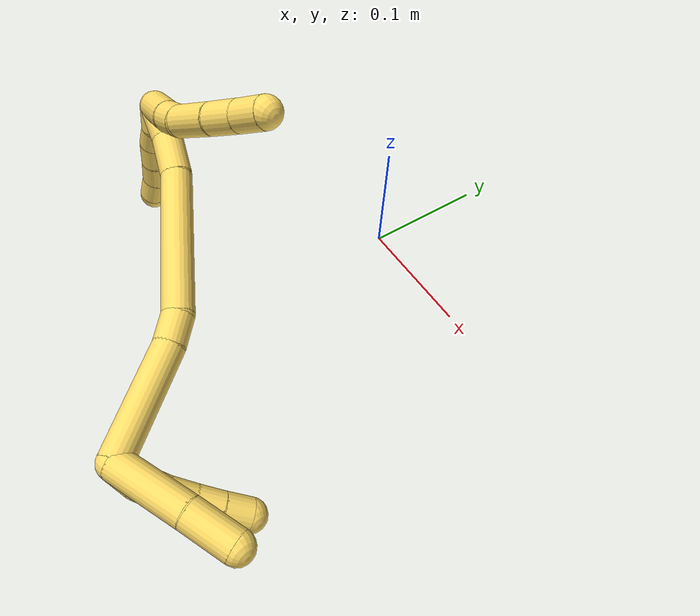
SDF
<sdf version="1.7">
 <world name="default">
  <model name="5">
   <static>0</static>
   <link name="5">
    <collision name="collision-cylinder-e_1_2_8">
     <pose>0.00334 0.006588 -0.018888 -2.80597 0.165424 -0.910218</pose>
     <geometry><cylinder><radius>0.0125</radius><length>0.040561</length></cylinder></geometry>
     <surface>
      <friction><ode><mu>1.16</mu><mu2>1.16</mu2><slip1>0</slip1><slip2>0</slip2></ode></friction>
      <contact><ode><kp>1e+06</kp><kd>1</kd><max_vel>0</max_vel><min_depth>0.001</min_depth></ode></contact>
     </surface>
    </collision>
    <visual name="visual-cylinder-e_1_2_8">
     <pose>0.00334 0.006588 -0.018888 -2.80597 0.165424 -0.910218</pose>
     <geometry><cylinder><radius>0.0125</radius><length>0.040561</length></cylinder></geometry>
     <material><ambient>1 0.858824 0.4 1</ambient></material>
    </visual>
    <collision name="collision-cylinder-e_2_8_9">
     <pose>0.006747 0.01601 -0.047432 -2.85616 0.006727 -0.04681</pose>
     <geometry><cylinder><radius>0.0125</radius><length>0.020128</length></cylinder></geometry>
     <surface>
      <friction><ode><mu>1.16</mu><mu2>1.16</mu2><slip1>0</slip1><slip2>0</slip2></ode></friction>
      <contact><ode><kp>1e+06</kp><kd>1</kd><max_vel>0</max_vel><min_depth>0.001</min_depth></ode></contact>
     </surface>
    </collision>
    <visual name="visual-cylinder-e_2_8_9">
     <pose>0.006747 0.01601 -0.047432 -2.85616 0.006727 -0.04681</pose>
     <geometry><cylinder><radius>0.0125</radius><length>0.020128</length></cylinder></geometry>
     <material><ambient>1 0.858824 0.4 1</ambient></material>
    </visual>
    <collision name="collision-cylinder-e_3_9_10">
     <pose>0.001488 0.024709 -0.074101 -2.8096 -0.287801 1.42616</pose>
     <geometry><cylinder><radius>0.0125</radius><length>0.037535</length></cylinder></geometry>
     <surface>
      <friction><ode><mu>1.16</mu><mu2>1.16</mu2><slip1>0</slip1><slip2>0</slip2></ode></friction>
      <contact><ode><kp>1e+06</kp><kd>1</kd><max_vel>0</max_vel><min_depth>0.001</min_depth></ode></contact>
     </surface>
    </collision>
    <visual name="visual-cylinder-e_3_9_10">
     <pose>0.001488 0.024709 -0.074101 -2.8096 -0.287801 1.42616</pose>
     <geometry><cylinder><radius>0.0125</radius><length>0.037535</length></cylinder></geometry>
     <material><ambient>1 0.858824 0.4 1</ambient></material>
    </visual>
    <collision name="collision-cylinder-e_4_10_11">
     <pose>-0.008822 0.034152 -0.103055 -2.85045 -0.38025 1.83958</pose>
     <geometry><cylinder><radius>0.0125</radius><length>0.026848</length></cylinder></geometry>
     <surface>
      <friction><ode><mu>1.16</mu><mu2>1.16</mu2><slip1>0</slip1><slip2>0</slip2></ode></friction>
      <contact><ode><kp>1e+06</kp><kd>1</kd><max_vel>0</max_vel><min_depth>0.001</min_depth></ode></contact>
     </surface>
    </collision>
    <visual name="visual-cylinder-e_4_10_11">
     <pose>-0.008822 0.034152 -0.103055 -2.85045 -0.38025 1.83958</pose>
     <geometry><cylinder><radius>0.0125</radius><length>0.026848</length></cylinder></geometry>
     <material><ambient>1 0.858824 0.4 1</ambient></material>
    </visual>
    <collision name="collision-cylinder-e_5_11_6">
     <pose>-0.018249 0.041491 -0.126016 -2.81275 -0.364648 1.67606</pose>
     <geometry><cylinder><radius>0.0125</radius><length>0.024928</length></cylinder></geometry>
     <surface>
      <friction><ode><mu>1.16</mu><mu2>1.16</mu2><slip1>0</slip1><slip2>0</slip2></ode></friction>
      <contact><ode><kp>1e+06</kp><kd>1</kd><max_vel>0</max_vel><min_depth>0.001</min_depth></ode></contact>
     </surface>
    </collision>
    <visual name="visual-cylinder-e_5_11_6">
     <pose>-0.018249 0.041491 -0.126016 -2.81275 -0.364648 1.67606</pose>
     <geometry><cylinder><radius>0.0125</radius><length>0.024928</length></cylinder></geometry>
     <material><ambient>1 0.858824 0.4 1</ambient></material>
    </visual>
    <collision name="collision-cylinder-e_1_2_12">
     <pose>0.003538 -0.009335 0.000584 1.50836 0.36159 0.340122</pose>
     <geometry><cylinder><radius>0.0125</radius><length>0.02</length></cylinder></geometry>
     <surface>
      <friction><ode><mu>1.16</mu><mu2>1.16</mu2><slip1>0</slip1><slip2>0</slip2></ode></friction>
      <contact><ode><kp>1e+06</kp><kd>1</kd><max_vel>0</max_vel><min_depth>0.001</min_depth></ode></contact>
     </surface>
    </collision>
    <visual name="visual-cylinder-e_1_2_12">
     <pose>0.003538 -0.009335 0.000584 1.50836 0.36159 0.340122</pose>
     <geometry><cylinder><radius>0.0125</radius><length>0.02</length></cylinder></geometry>
     <material><ambient>1 0.858824 0.4 1</ambient></material>
    </visual>
    <collision name="collision-cylinder-e_2_12_13">
     <pose>0.01002 -0.027427 0.004995 1.15869 0.298891 0.19638</pose>
     <geometry><cylinder><radius>0.0125</radius><length>0.02</length></cylinder></geometry>
     <surface>
      <friction><ode><mu>1.16</mu><mu2>1.16</mu2><slip1>0</slip1><slip2>0</slip2></ode></friction>
      <contact><ode><kp>1e+06</kp><kd>1</kd><max_vel>0</max_vel><min_depth>0.001</min_depth></ode></contact>
     </surface>
    </collision>
    <visual name="visual-cylinder-e_2_12_13">
     <pose>0.01002 -0.027427 0.004995 1.15869 0.298891 0.19638</pose>
     <geometry><cylinder><radius>0.0125</radius><length>0.02</length></cylinder></geometry>
     <material><ambient>1 0.858824 0.4 1</ambient></material>
    </visual>
    <collision name="collision-cylinder-e_3_13_14">
     <pose>0.015844 -0.045669 0.01014 1.43285 0.292102 0.254789</pose>
     <geometry><cylinder><radius>0.0125</radius><length>0.02</length></cylinder></geometry>
     <surface>
      <friction><ode><mu>1.16</mu><mu2>1.16</mu2><slip1>0</slip1><slip2>0</slip2></ode></friction>
      <contact><ode><kp>1e+06</kp><kd>1</kd><max_vel>0</max_vel><min_depth>0.001</min_depth></ode></contact>
     </surface>
    </collision>
    <visual name="visual-cylinder-e_3_13_14">
     <pose>0.015844 -0.045669 0.01014 1.43285 0.292102 0.254789</pose>
     <geometry><cylinder><radius>0.0125</radius><length>0.02</length></cylinder></geometry>
     <material><ambient>1 0.858824 0.4 1</ambient></material>
    </visual>
    <collision name="collision-cylinder-e_4_14_15">
     <pose>0.021552 -0.064532 0.013473 1.35893 0.28672 0.232157</pose>
     <geometry><cylinder><radius>0.0125</radius><length>0.02</length></cylinder></geometry>
     <surface>
      <friction><ode><mu>1.16</mu><mu2>1.16</mu2><slip1>0</slip1><slip2>0</slip2></ode></friction>
      <contact><ode><kp>1e+06</kp><kd>1</kd><max_vel>0</max_vel><min_depth>0.001</min_depth></ode></contact>
     </surface>
    </collision>
    <visual name="visual-cylinder-e_4_14_15">
     <pose>0.021552 -0.064532 0.013473 1.35893 0.28672 0.232157</pose>
     <geometry><cylinder><radius>0.0125</radius><length>0.02</length></cylinder></geometry>
     <material><ambient>1 0.858824 0.4 1</ambient></material>
    </visual>
    <collision name="collision-cylinder-e_5_15_5">
     <pose>0.028248 -0.082653 0.01842 1.24754 0.3972 0.287649</pose>
     <geometry><cylinder><radius>0.0125</radius><length>0.02</length></cylinder></geometry>
     <surface>
      <friction><ode><mu>1.16</mu><mu2>1.16</mu2><slip1>0</slip1><slip2>0</slip2></ode></friction>
      <contact><ode><kp>1e+06</kp><kd>1</kd><max_vel>0</max_vel><min_depth>0.001</min_depth></ode></contact>
     </surface>
    </collision>
    <visual name="visual-cylinder-e_5_15_5">
     <pose>0.028248 -0.082653 0.01842 1.24754 0.3972 0.287649</pose>
     <geometry><cylinder><radius>0.0125</radius><length>0.02</length></cylinder></geometry>
     <material><ambient>1 0.858824 0.4 1</ambient></material>
    </visual>
    <collision name="collision-cylinder-e_1_2_16">
     <pose>0.005702 -0.006687 -0.012174 2.63934 0.389556 1.31109</pose>
     <geometry><cylinder><radius>0.0125</radius><length>0.030029</length></cylinder></geometry>
     <surface>
      <friction><ode><mu>1.16</mu><mu2>1.16</mu2><slip1>0</slip1><slip2>0</slip2></ode></friction>
      <contact><ode><kp>1e+06</kp><kd>1</kd><max_vel>0</max_vel><min_depth>0.001</min_depth></ode></contact>
     </surface>
    </collision>
    <visual name="visual-cylinder-e_1_2_16">
     <pose>0.005702 -0.006687 -0.012174 2.63934 0.389556 1.31109</pose>
     <geometry><cylinder><radius>0.0125</radius><length>0.030029</length></cylinder></geometry>
     <material><ambient>1 0.858824 0.4 1</ambient></material>
    </visual>
    <collision name="collision-cylinder-e_2_16_17">
     <pose>0.020151 -0.017916 -0.039644 2.85287 0.501455 2.10907</pose>
     <geometry><cylinder><radius>0.0125</radius><length>0.036392</length></cylinder></geometry>
     <surface>
      <friction><ode><mu>1.16</mu><mu2>1.16</mu2><slip1>0</slip1><slip2>0</slip2></ode></friction>
      <contact><ode><kp>1e+06</kp><kd>1</kd><max_vel>0</max_vel><min_depth>0.001</min_depth></ode></contact>
     </surface>
    </collision>
    <visual name="visual-cylinder-e_2_16_17">
     <pose>0.020151 -0.017916 -0.039644 2.85287 0.501455 2.10907</pose>
     <geometry><cylinder><radius>0.0125</radius><length>0.036392</length></cylinder></geometry>
     <material><ambient>1 0.858824 0.4 1</ambient></material>
    </visual>
    <collision name="collision-cylinder-e_3_17_18">
     <pose>0.06669 -0.034708 -0.099136 2.87125 0.689218 2.41721</pose>
     <geometry><cylinder><radius>0.0125</radius><length>0.118855</length></cylinder></geometry>
     <surface>
      <friction><ode><mu>1.16</mu><mu2>1.16</mu2><slip1>0</slip1><slip2>0</slip2></ode></friction>
      <contact><ode><kp>1e+06</kp><kd>1</kd><max_vel>0</max_vel><min_depth>0.001</min_depth></ode></contact>
     </surface>
    </collision>
    <visual name="visual-cylinder-e_3_17_18">
     <pose>0.06669 -0.034708 -0.099136 2.87125 0.689218 2.41721</pose>
     <geometry><cylinder><radius>0.0125</radius><length>0.118855</length></cylinder></geometry>
     <material><ambient>1 0.858824 0.4 1</ambient></material>
    </visual>
    <collision name="collision-cylinder-e_4_18_19">
     <pose>0.114651 -0.048488 -0.150228 2.92288 0.9637 2.72772</pose>
     <geometry><cylinder><radius>0.0125</radius><length>0.024762</length></cylinder></geometry>
     <surface>
      <friction><ode><mu>1.16</mu><mu2>1.16</mu2><slip1>0</slip1><slip2>0</slip2></ode></friction>
      <contact><ode><kp>1e+06</kp><kd>1</kd><max_vel>0</max_vel><min_depth>0.001</min_depth></ode></contact>
     </surface>
    </collision>
    <visual name="visual-cylinder-e_4_18_19">
     <pose>0.114651 -0.048488 -0.150228 2.92288 0.9637 2.72772</pose>
     <geometry><cylinder><radius>0.0125</radius><length>0.024762</length></cylinder></geometry>
     <material><ambient>1 0.858824 0.4 1</ambient></material>
    </visual>
    <collision name="collision-cylinder-e_5_19_1">
     <pose>0.164527 -0.051077 -0.17823 3.09158 1.0817 3.05835</pose>
     <geometry><cylinder><radius>0.0125</radius><length>0.089961</length></cylinder></geometry>
     <surface>
      <friction><ode><mu>1.16</mu><mu2>1.16</mu2><slip1>0</slip1><slip2>0</slip2></ode></friction>
      <contact><ode><kp>1e+06</kp><kd>1</kd><max_vel>0</max_vel><min_depth>0.001</min_depth></ode></contact>
     </surface>
    </collision>
    <visual name="visual-cylinder-e_5_19_1">
     <pose>0.164527 -0.051077 -0.17823 3.09158 1.0817 3.05835</pose>
     <geometry><cylinder><radius>0.0125</radius><length>0.089961</length></cylinder></geometry>
     <material><ambient>1 0.858824 0.4 1</ambient></material>
    </visual>
    <collision name="collision-cylinder-e_1_1_20">
     <pose>0.196859 -0.057617 -0.228932 2.95839 -0.24029 -1.84075</pose>
     <geometry><cylinder><radius>0.0125</radius><length>0.061979</length></cylinder></geometry>
     <surface>
      <friction><ode><mu>1.16</mu><mu2>1.16</mu2><slip1>0</slip1><slip2>0</slip2></ode></friction>
      <contact><ode><kp>1e+06</kp><kd>1</kd><max_vel>0</max_vel><min_depth>0.001</min_depth></ode></contact>
     </surface>
    </collision>
    <visual name="visual-cylinder-e_1_1_20">
     <pose>0.196859 -0.057617 -0.228932 2.95839 -0.24029 -1.84075</pose>
     <geometry><cylinder><radius>0.0125</radius><length>0.061979</length></cylinder></geometry>
     <material><ambient>1 0.858824 0.4 1</ambient></material>
    </visual>
    <collision name="collision-cylinder-e_2_20_4">
     <pose>0.185214 -0.068169 -0.276345 2.86446 -0.226542 -1.36849</pose>
     <geometry><cylinder><radius>0.0125</radius><length>0.038021</length></cylinder></geometry>
     <surface>
      <friction><ode><mu>1.16</mu><mu2>1.16</mu2><slip1>0</slip1><slip2>0</slip2></ode></friction>
      <contact><ode><kp>1e+06</kp><kd>1</kd><max_vel>0</max_vel><min_depth>0.001</min_depth></ode></contact>
     </surface>
    </collision>
    <visual name="visual-cylinder-e_2_20_4">
     <pose>0.185214 -0.068169 -0.276345 2.86446 -0.226542 -1.36849</pose>
     <geometry><cylinder><radius>0.0125</radius><length>0.038021</length></cylinder></geometry>
     <material><ambient>1 0.858824 0.4 1</ambient></material>
    </visual>
    <collision name="collision-cylinder-e_1_1_21">
     <pose>0.202621 -0.057333 -0.207725 2.5867 -0.16202 -0.555421</pose>
     <geometry><cylinder><radius>0.0125</radius><length>0.02</length></cylinder></geometry>
     <surface>
      <friction><ode><mu>1.16</mu><mu2>1.16</mu2><slip1>0</slip1><slip2>0</slip2></ode></friction>
      <contact><ode><kp>1e+06</kp><kd>1</kd><max_vel>0</max_vel><min_depth>0.001</min_depth></ode></contact>
     </surface>
    </collision>
    <visual name="visual-cylinder-e_1_1_21">
     <pose>0.202621 -0.057333 -0.207725 2.5867 -0.16202 -0.555421</pose>
     <geometry><cylinder><radius>0.0125</radius><length>0.02</length></cylinder></geometry>
     <material><ambient>1 0.858824 0.4 1</ambient></material>
    </visual>
    <collision name="collision-cylinder-e_2_21_22">
     <pose>0.197137 -0.068792 -0.222883 2.39538 -0.397482 -0.950367</pose>
     <geometry><cylinder><radius>0.0125</radius><length>0.02</length></cylinder></geometry>
     <surface>
      <friction><ode><mu>1.16</mu><mu2>1.16</mu2><slip1>0</slip1><slip2>0</slip2></ode></friction>
      <contact><ode><kp>1e+06</kp><kd>1</kd><max_vel>0</max_vel><min_depth>0.001</min_depth></ode></contact>
     </surface>
    </collision>
    <visual name="visual-cylinder-e_2_21_22">
     <pose>0.197137 -0.068792 -0.222883 2.39538 -0.397482 -0.950367</pose>
     <geometry><cylinder><radius>0.0125</radius><length>0.02</length></cylinder></geometry>
     <material><ambient>1 0.858824 0.4 1</ambient></material>
    </visual>
    <collision name="collision-cylinder-e_3_22_23">
     <pose>0.188356 -0.081102 -0.235921 2.37383 -0.513227 -1.15223</pose>
     <geometry><cylinder><radius>0.0125</radius><length>0.02</length></cylinder></geometry>
     <surface>
      <friction><ode><mu>1.16</mu><mu2>1.16</mu2><slip1>0</slip1><slip2>0</slip2></ode></friction>
      <contact><ode><kp>1e+06</kp><kd>1</kd><max_vel>0</max_vel><min_depth>0.001</min_depth></ode></contact>
     </surface>
    </collision>
    <visual name="visual-cylinder-e_3_22_23">
     <pose>0.188356 -0.081102 -0.235921 2.37383 -0.513227 -1.15223</pose>
     <geometry><cylinder><radius>0.0125</radius><length>0.02</length></cylinder></geometry>
     <material><ambient>1 0.858824 0.4 1</ambient></material>
    </visual>
    <collision name="collision-cylinder-e_4_23_24">
     <pose>0.17821 -0.092593 -0.248746 2.44898 -0.551011 -1.32909</pose>
     <geometry><cylinder><radius>0.0125</radius><length>0.02</length></cylinder></geometry>
     <surface>
      <friction><ode><mu>1.16</mu><mu2>1.16</mu2><slip1>0</slip1><slip2>0</slip2></ode></friction>
      <contact><ode><kp>1e+06</kp><kd>1</kd><max_vel>0</max_vel><min_depth>0.001</min_depth></ode></contact>
     </surface>
    </collision>
    <visual name="visual-cylinder-e_4_23_24">
     <pose>0.17821 -0.092593 -0.248746 2.44898 -0.551011 -1.32909</pose>
     <geometry><cylinder><radius>0.0125</radius><length>0.02</length></cylinder></geometry>
     <material><ambient>1 0.858824 0.4 1</ambient></material>
    </visual>
    <collision name="collision-cylinder-e_5_24_3">
     <pose>0.16752 -0.10381 -0.261375 2.38119 -0.576944 -1.27741</pose>
     <geometry><cylinder><radius>0.0125</radius><length>0.02</length></cylinder></geometry>
     <surface>
      <friction><ode><mu>1.16</mu><mu2>1.16</mu2><slip1>0</slip1><slip2>0</slip2></ode></friction>
      <contact><ode><kp>1e+06</kp><kd>1</kd><max_vel>0</max_vel><min_depth>0.001</min_depth></ode></contact>
     </surface>
    </collision>
    <visual name="visual-cylinder-e_5_24_3">
     <pose>0.16752 -0.10381 -0.261375 2.38119 -0.576944 -1.27741</pose>
     <geometry><cylinder><radius>0.0125</radius><length>0.02</length></cylinder></geometry>
     <material><ambient>1 0.858824 0.4 1</ambient></material>
    </visual>
    <collision name="collision-sphere-3">
     <pose>0.162066 -0.109586 -0.267448 0 -0 0</pose>
     <geometry><sphere><radius>0.0125</radius></sphere></geometry>
     <surface>
      <friction><ode><mu>1.16</mu><mu2>1.16</mu2><slip1>0</slip1><slip2>0</slip2></ode></friction>
      <contact><ode><kp>1e+06</kp><kd>1</kd><max_vel>0</max_vel><min_depth>0.001</min_depth></ode></contact>
     </surface>
    </collision>
    <visual name="visual-sphere-3">
     <pose>0.162066 -0.109586 -0.267448 0 -0 0</pose>
     <geometry><sphere><radius>0.0125</radius></sphere></geometry>
     <material><ambient>1 0.858824 0.4 1</ambient></material>
    </visual>
    <collision name="collision-sphere-24">
     <pose>0.172975 -0.098033 -0.255303 0 -0 0</pose>
     <geometry><sphere><radius>0.0125</radius></sphere></geometry>
     <surface>
      <friction><ode><mu>1.16</mu><mu2>1.16</mu2><slip1>0</slip1><slip2>0</slip2></ode></friction>
      <contact><ode><kp>1e+06</kp><kd>1</kd><max_vel>0</max_vel><min_depth>0.001</min_depth></ode></contact>
     </surface>
    </collision>
    <visual name="visual-sphere-24">
     <pose>0.172975 -0.098033 -0.255303 0 -0 0</pose>
     <geometry><sphere><radius>0.0125</radius></sphere></geometry>
     <material><ambient>1 0.858824 0.4 1</ambient></material>
    </visual>
    <collision name="collision-sphere-23">
     <pose>0.183446 -0.087153 -0.242189 0 -0 0</pose>
     <geometry><sphere><radius>0.0125</radius></sphere></geometry>
     <surface>
      <friction><ode><mu>1.16</mu><mu2>1.16</mu2><slip1>0</slip1><slip2>0</slip2></ode></friction>
      <contact><ode><kp>1e+06</kp><kd>1</kd><max_vel>0</max_vel><min_depth>0.001</min_depth></ode></contact>
     </surface>
    </collision>
    <visual name="visual-sphere-23">
     <pose>0.183446 -0.087153 -0.242189 0 -0 0</pose>
     <geometry><sphere><radius>0.0125</radius></sphere></geometry>
     <material><ambient>1 0.858824 0.4 1</ambient></material>
    </visual>
    <collision name="collision-sphere-22">
     <pose>0.193266 -0.075052 -0.229653 0 -0 0</pose>
     <geometry><sphere><radius>0.0125</radius></sphere></geometry>
     <surface>
      <friction><ode><mu>1.16</mu><mu2>1.16</mu2><slip1>0</slip1><slip2>0</slip2></ode></friction>
      <contact><ode><kp>1e+06</kp><kd>1</kd><max_vel>0</max_vel><min_depth>0.001</min_depth></ode></contact>
     </surface>
    </collision>
    <visual name="visual-sphere-22">
     <pose>0.193266 -0.075052 -0.229653 0 -0 0</pose>
     <geometry><sphere><radius>0.0125</radius></sphere></geometry>
     <material><ambient>1 0.858824 0.4 1</ambient></material>
    </visual>
    <collision name="collision-sphere-21">
     <pose>0.201008 -0.062533 -0.216113 0 -0 0</pose>
     <geometry><sphere><radius>0.0125</radius></sphere></geometry>
     <surface>
      <friction><ode><mu>1.16</mu><mu2>1.16</mu2><slip1>0</slip1><slip2>0</slip2></ode></friction>
      <contact><ode><kp>1e+06</kp><kd>1</kd><max_vel>0</max_vel><min_depth>0.001</min_depth></ode></contact>
     </surface>
    </collision>
    <visual name="visual-sphere-21">
     <pose>0.201008 -0.062533 -0.216113 0 -0 0</pose>
     <geometry><sphere><radius>0.0125</radius></sphere></geometry>
     <material><ambient>1 0.858824 0.4 1</ambient></material>
    </visual>
    <collision name="collision-sphere-4">
     <pose>0.180944 -0.073237 -0.294163 0 -0 0</pose>
     <geometry><sphere><radius>0.0125</radius></sphere></geometry>
     <surface>
      <friction><ode><mu>1.16</mu><mu2>1.16</mu2><slip1>0</slip1><slip2>0</slip2></ode></friction>
      <contact><ode><kp>1e+06</kp><kd>1</kd><max_vel>0</max_vel><min_depth>0.001</min_depth></ode></contact>
     </surface>
    </collision>
    <visual name="visual-sphere-4">
     <pose>0.180944 -0.073237 -0.294163 0 -0 0</pose>
     <geometry><sphere><radius>0.0125</radius></sphere></geometry>
     <material><ambient>1 0.858824 0.4 1</ambient></material>
    </visual>
    <collision name="collision-sphere-20">
     <pose>0.189484 -0.063101 -0.258527 0 -0 0</pose>
     <geometry><sphere><radius>0.0125</radius></sphere></geometry>
     <surface>
      <friction><ode><mu>1.16</mu><mu2>1.16</mu2><slip1>0</slip1><slip2>0</slip2></ode></friction>
      <contact><ode><kp>1e+06</kp><kd>1</kd><max_vel>0</max_vel><min_depth>0.001</min_depth></ode></contact>
     </surface>
    </collision>
    <visual name="visual-sphere-20">
     <pose>0.189484 -0.063101 -0.258527 0 -0 0</pose>
     <geometry><sphere><radius>0.0125</radius></sphere></geometry>
     <material><ambient>1 0.858824 0.4 1</ambient></material>
    </visual>
    <collision name="collision-sphere-6">
     <pose>-0.022694 0.045251 -0.137037 0 -0 0</pose>
     <geometry><sphere><radius>0.0125</radius></sphere></geometry>
     <surface>
      <friction><ode><mu>1.16</mu><mu2>1.16</mu2><slip1>0</slip1><slip2>0</slip2></ode></friction>
      <contact><ode><kp>1e+06</kp><kd>1</kd><max_vel>0</max_vel><min_depth>0.001</min_depth></ode></contact>
     </surface>
    </collision>
    <visual name="visual-sphere-6">
     <pose>-0.022694 0.045251 -0.137037 0 -0 0</pose>
     <geometry><sphere><radius>0.0125</radius></sphere></geometry>
     <material><ambient>1 0.858824 0.4 1</ambient></material>
    </visual>
    <collision name="collision-sphere-11">
     <pose>-0.013804 0.03773 -0.114996 0 -0 0</pose>
     <geometry><sphere><radius>0.0125</radius></sphere></geometry>
     <surface>
      <friction><ode><mu>1.16</mu><mu2>1.16</mu2><slip1>0</slip1><slip2>0</slip2></ode></friction>
      <contact><ode><kp>1e+06</kp><kd>1</kd><max_vel>0</max_vel><min_depth>0.001</min_depth></ode></contact>
     </surface>
    </collision>
    <visual name="visual-sphere-11">
     <pose>-0.013804 0.03773 -0.114996 0 -0 0</pose>
     <geometry><sphere><radius>0.0125</radius></sphere></geometry>
     <material><ambient>1 0.858824 0.4 1</ambient></material>
    </visual>
    <collision name="collision-sphere-10">
     <pose>-0.00384 0.030574 -0.091114 0 -0 0</pose>
     <geometry><sphere><radius>0.0125</radius></sphere></geometry>
     <surface>
      <friction><ode><mu>1.16</mu><mu2>1.16</mu2><slip1>0</slip1><slip2>0</slip2></ode></friction>
      <contact><ode><kp>1e+06</kp><kd>1</kd><max_vel>0</max_vel><min_depth>0.001</min_depth></ode></contact>
     </surface>
    </collision>
    <visual name="visual-sphere-10">
     <pose>-0.00384 0.030574 -0.091114 0 -0 0</pose>
     <geometry><sphere><radius>0.0125</radius></sphere></geometry>
     <material><ambient>1 0.858824 0.4 1</ambient></material>
    </visual>
    <collision name="collision-sphere-9">
     <pose>0.006815 0.018844 -0.057088 0 -0 0</pose>
     <geometry><sphere><radius>0.0125</radius></sphere></geometry>
     <surface>
      <friction><ode><mu>1.16</mu><mu2>1.16</mu2><slip1>0</slip1><slip2>0</slip2></ode></friction>
      <contact><ode><kp>1e+06</kp><kd>1</kd><max_vel>0</max_vel><min_depth>0.001</min_depth></ode></contact>
     </surface>
    </collision>
    <visual name="visual-sphere-9">
     <pose>0.006815 0.018844 -0.057088 0 -0 0</pose>
     <geometry><sphere><radius>0.0125</radius></sphere></geometry>
     <material><ambient>1 0.858824 0.4 1</ambient></material>
    </visual>
    <collision name="collision-sphere-2">
     <geometry><sphere><radius>0.0125</radius></sphere></geometry>
     <surface>
      <friction><ode><mu>1.16</mu><mu2>1.16</mu2><slip1>0</slip1><slip2>0</slip2></ode></friction>
      <contact><ode><kp>1e+06</kp><kd>1</kd><max_vel>0</max_vel><min_depth>0.001</min_depth></ode></contact>
     </surface>
    </collision>
    <visual name="visual-sphere-2">
     <geometry><sphere><radius>0.0125</radius></sphere></geometry>
     <material><ambient>1 0.858824 0.4 1</ambient></material>
    </visual>
    <collision name="collision-sphere-19">
     <pose>0.12482 -0.050021 -0.157123 0 -0 0</pose>
     <geometry><sphere><radius>0.0125</radius></sphere></geometry>
     <surface>
      <friction><ode><mu>1.16</mu><mu2>1.16</mu2><slip1>0</slip1><slip2>0</slip2></ode></friction>
      <contact><ode><kp>1e+06</kp><kd>1</kd><max_vel>0</max_vel><min_depth>0.001</min_depth></ode></contact>
     </surface>
    </collision>
    <visual name="visual-sphere-19">
     <pose>0.12482 -0.050021 -0.157123 0 -0 0</pose>
     <geometry><sphere><radius>0.0125</radius></sphere></geometry>
     <material><ambient>1 0.858824 0.4 1</ambient></material>
    </visual>
    <collision name="collision-sphere-8">
     <pose>0.006679 0.013177 -0.037775 0 -0 0</pose>
     <geometry><sphere><radius>0.0125</radius></sphere></geometry>
     <surface>
      <friction><ode><mu>1.16</mu><mu2>1.16</mu2><slip1>0</slip1><slip2>0</slip2></ode></friction>
      <contact><ode><kp>1e+06</kp><kd>1</kd><max_vel>0</max_vel><min_depth>0.001</min_depth></ode></contact>
     </surface>
    </collision>
    <visual name="visual-sphere-8">
     <pose>0.006679 0.013177 -0.037775 0 -0 0</pose>
     <geometry><sphere><radius>0.0125</radius></sphere></geometry>
     <material><ambient>1 0.858824 0.4 1</ambient></material>
    </visual>
    <collision name="collision-sphere-12">
     <pose>0.007075 -0.01867 0.001167 0 -0 0</pose>
     <geometry><sphere><radius>0.0125</radius></sphere></geometry>
     <surface>
      <friction><ode><mu>1.16</mu><mu2>1.16</mu2><slip1>0</slip1><slip2>0</slip2></ode></friction>
      <contact><ode><kp>1e+06</kp><kd>1</kd><max_vel>0</max_vel><min_depth>0.001</min_depth></ode></contact>
     </surface>
    </collision>
    <visual name="visual-sphere-12">
     <pose>0.007075 -0.01867 0.001167 0 -0 0</pose>
     <geometry><sphere><radius>0.0125</radius></sphere></geometry>
     <material><ambient>1 0.858824 0.4 1</ambient></material>
    </visual>
    <collision name="collision-sphere-13">
     <pose>0.012964 -0.036183 0.008823 0 -0 0</pose>
     <geometry><sphere><radius>0.0125</radius></sphere></geometry>
     <surface>
      <friction><ode><mu>1.16</mu><mu2>1.16</mu2><slip1>0</slip1><slip2>0</slip2></ode></friction>
      <contact><ode><kp>1e+06</kp><kd>1</kd><max_vel>0</max_vel><min_depth>0.001</min_depth></ode></contact>
     </surface>
    </collision>
    <visual name="visual-sphere-13">
     <pose>0.012964 -0.036183 0.008823 0 -0 0</pose>
     <geometry><sphere><radius>0.0125</radius></sphere></geometry>
     <material><ambient>1 0.858824 0.4 1</ambient></material>
    </visual>
    <collision name="collision-sphere-14">
     <pose>0.018724 -0.055154 0.011456 0 -0 0</pose>
     <geometry><sphere><radius>0.0125</radius></sphere></geometry>
     <surface>
      <friction><ode><mu>1.16</mu><mu2>1.16</mu2><slip1>0</slip1><slip2>0</slip2></ode></friction>
      <contact><ode><kp>1e+06</kp><kd>1</kd><max_vel>0</max_vel><min_depth>0.001</min_depth></ode></contact>
     </surface>
    </collision>
    <visual name="visual-sphere-14">
     <pose>0.018724 -0.055154 0.011456 0 -0 0</pose>
     <geometry><sphere><radius>0.0125</radius></sphere></geometry>
     <material><ambient>1 0.858824 0.4 1</ambient></material>
    </visual>
    <collision name="collision-sphere-15">
     <pose>0.02438 -0.073909 0.01549 0 -0 0</pose>
     <geometry><sphere><radius>0.0125</radius></sphere></geometry>
     <surface>
      <friction><ode><mu>1.16</mu><mu2>1.16</mu2><slip1>0</slip1><slip2>0</slip2></ode></friction>
      <contact><ode><kp>1e+06</kp><kd>1</kd><max_vel>0</max_vel><min_depth>0.001</min_depth></ode></contact>
     </surface>
    </collision>
    <visual name="visual-sphere-15">
     <pose>0.02438 -0.073909 0.01549 0 -0 0</pose>
     <geometry><sphere><radius>0.0125</radius></sphere></geometry>
     <material><ambient>1 0.858824 0.4 1</ambient></material>
    </visual>
    <collision name="collision-sphere-5">
     <pose>0.032117 -0.091397 0.021349 0 -0 0</pose>
     <geometry><sphere><radius>0.0125</radius></sphere></geometry>
     <surface>
      <friction><ode><mu>1.16</mu><mu2>1.16</mu2><slip1>0</slip1><slip2>0</slip2></ode></friction>
      <contact><ode><kp>1e+06</kp><kd>1</kd><max_vel>0</max_vel><min_depth>0.001</min_depth></ode></contact>
     </surface>
    </collision>
    <visual name="visual-sphere-5">
     <pose>0.032117 -0.091397 0.021349 0 -0 0</pose>
     <geometry><sphere><radius>0.0125</radius></sphere></geometry>
     <material><ambient>1 0.858824 0.4 1</ambient></material>
    </visual>
    <collision name="collision-sphere-16">
     <pose>0.011404 -0.013373 -0.024349 0 -0 0</pose>
     <geometry><sphere><radius>0.0125</radius></sphere></geometry>
     <surface>
      <friction><ode><mu>1.16</mu><mu2>1.16</mu2><slip1>0</slip1><slip2>0</slip2></ode></friction>
      <contact><ode><kp>1e+06</kp><kd>1</kd><max_vel>0</max_vel><min_depth>0.001</min_depth></ode></contact>
     </surface>
    </collision>
    <visual name="visual-sphere-16">
     <pose>0.011404 -0.013373 -0.024349 0 -0 0</pose>
     <geometry><sphere><radius>0.0125</radius></sphere></geometry>
     <material><ambient>1 0.858824 0.4 1</ambient></material>
    </visual>
    <collision name="collision-sphere-17">
     <pose>0.028898 -0.022459 -0.054939 0 -0 0</pose>
     <geometry><sphere><radius>0.0125</radius></sphere></geometry>
     <surface>
      <friction><ode><mu>1.16</mu><mu2>1.16</mu2><slip1>0</slip1><slip2>0</slip2></ode></friction>
      <contact><ode><kp>1e+06</kp><kd>1</kd><max_vel>0</max_vel><min_depth>0.001</min_depth></ode></contact>
     </surface>
    </collision>
    <visual name="visual-sphere-17">
     <pose>0.028898 -0.022459 -0.054939 0 -0 0</pose>
     <geometry><sphere><radius>0.0125</radius></sphere></geometry>
     <material><ambient>1 0.858824 0.4 1</ambient></material>
    </visual>
    <collision name="collision-sphere-18">
     <pose>0.104482 -0.046956 -0.143333 0 -0 0</pose>
     <geometry><sphere><radius>0.0125</radius></sphere></geometry>
     <surface>
      <friction><ode><mu>1.16</mu><mu2>1.16</mu2><slip1>0</slip1><slip2>0</slip2></ode></friction>
      <contact><ode><kp>1e+06</kp><kd>1</kd><max_vel>0</max_vel><min_depth>0.001</min_depth></ode></contact>
     </surface>
    </collision>
    <visual name="visual-sphere-18">
     <pose>0.104482 -0.046956 -0.143333 0 -0 0</pose>
     <geometry><sphere><radius>0.0125</radius></sphere></geometry>
     <material><ambient>1 0.858824 0.4 1</ambient></material>
    </visual>
    <collision name="collision-sphere-1">
     <pose>0.204234 -0.052134 -0.199337 0 -0 0</pose>
     <geometry><sphere><radius>0.0125</radius></sphere></geometry>
     <surface>
      <friction><ode><mu>1.16</mu><mu2>1.16</mu2><slip1>0</slip1><slip2>0</slip2></ode></friction>
      <contact><ode><kp>1e+06</kp><kd>1</kd><max_vel>0</max_vel><min_depth>0.001</min_depth></ode></contact>
     </surface>
    </collision>
    <visual name="visual-sphere-1">
     <pose>0.204234 -0.052134 -0.199337 0 -0 0</pose>
     <geometry><sphere><radius>0.0125</radius></sphere></geometry>
     <material><ambient>1 0.858824 0.4 1</ambient></material>
    </visual>
    <inertial>
     <pose>0.087481 -0.034844 -0.121376 0 -0 0</pose>
     <mass>0.75</mass>
     <inertia>
      <ixx>-3.6e-05</ixx>
      <ixy>0</ixy>
      <ixz>0</ixz>
      <iyy>0.000238</iyy>
      <iyz>0</iyz>
      <izz>-0.000137</izz>
     </inertia>
    </inertial>
   </link>
   <pose>-0.141433 -0.133705 0.109265 1.71802 0.185382 -1.38169</pose>
  </model>
 </world>
</sdf>
